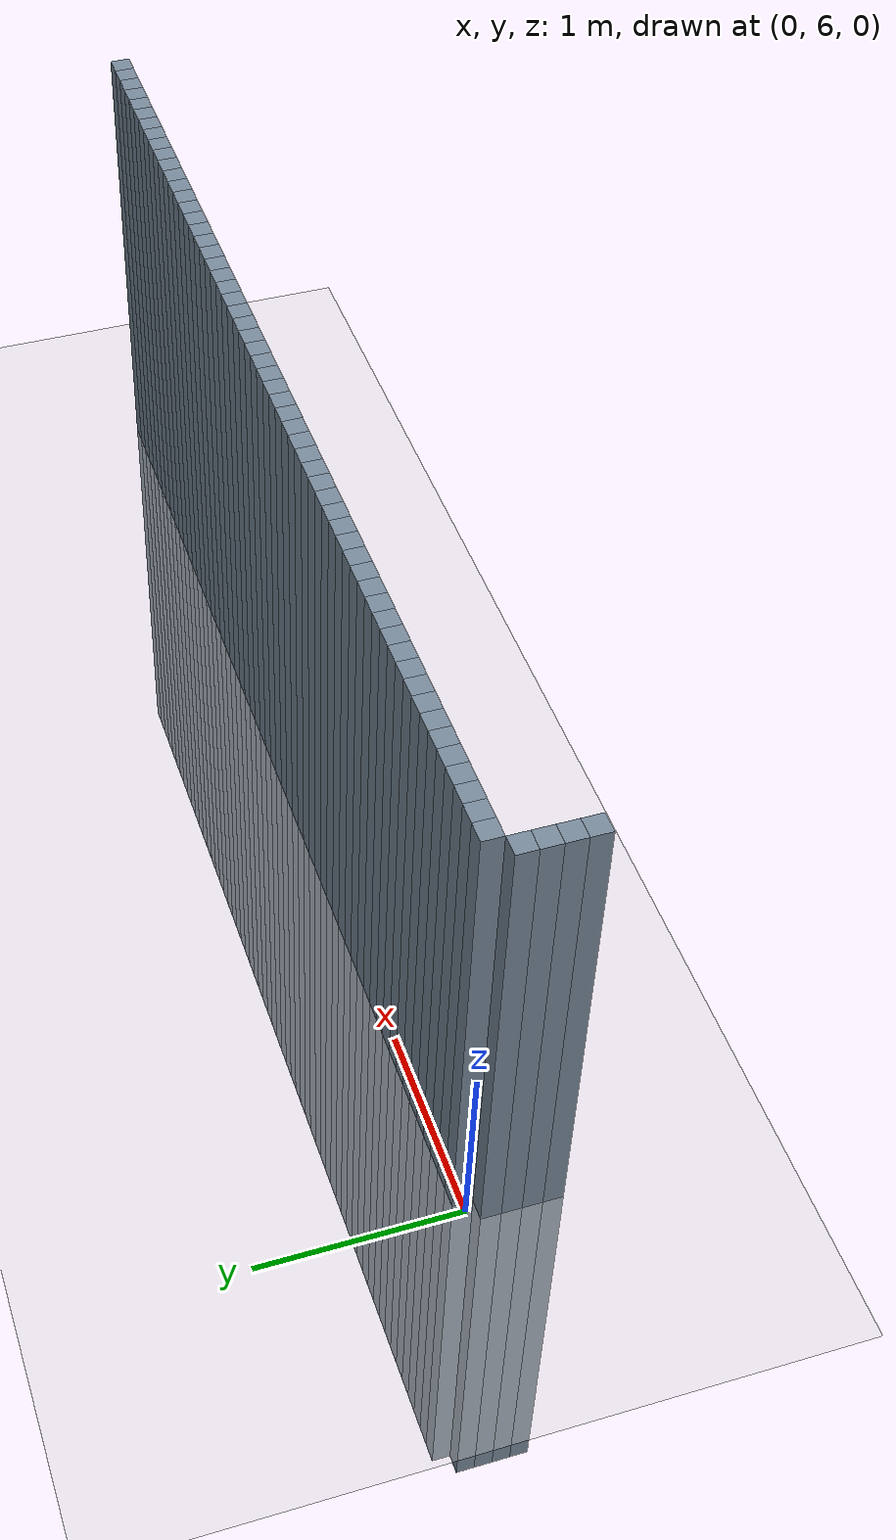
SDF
<sdf version="1.6">
 <world name="default">
  <model name="ground_plane">
   <static>1</static>
   <link name="link">
    <collision name="collision">
     <geometry><plane><normal>0 0 1</normal><size>100 100</size></plane></geometry>
     <surface><friction><ode><mu>100</mu><mu2>50</mu2></ode></friction></surface>
    </collision>
    <visual name="visual">
     <cast_shadows>0</cast_shadows>
     <geometry><plane><normal>0 0 1</normal><size>100 100</size></plane></geometry>
     <material>
      <script><uri>file://media/materials/scripts/gazebo.material</uri><name>Gazebo/Grey</name></script>
     </material>
    </visual>
   </link>
  </model>
  <model name="unit_cylinder_56">
   <static>1</static>
   <pose>0 5.6 0 0 -0 0</pose>
   <link name="link">
    <inertial>
     <mass>1</mass>
     <inertia><ixx>0.145833</ixx><ixy>0</ixy><ixz>0</ixz><iyy>0.145833</iyy><iyz>0</iyz><izz>0.125</izz></inertia>
    </inertial>
    <collision name="collision"><geometry><box><size>0.1 0.1 5</size></box></geometry></collision>
    <visual name="visual">
     <geometry><box><size>0.1 0.1 5</size></box></geometry>
     <material><ambient>0.466667 0.533333 0.6 1</ambient><diffuse>0.466667 0.533333 0.6 1</diffuse></material>
     <material>
      <script><name>Gazebo/Grey</name><uri>file://media/materials/scripts/gazebo.material</uri></script>
     </material>
    </visual>
   </link>
  </model>
  <model name="unit_cylinder_57">
   <static>1</static>
   <pose>0 5.7 0 0 -0 0</pose>
   <link name="link">
    <inertial>
     <mass>1</mass>
     <inertia><ixx>0.145833</ixx><ixy>0</ixy><ixz>0</ixz><iyy>0.145833</iyy><iyz>0</iyz><izz>0.125</izz></inertia>
    </inertial>
    <collision name="collision"><geometry><box><size>0.1 0.1 5</size></box></geometry></collision>
    <visual name="visual">
     <geometry><box><size>0.1 0.1 5</size></box></geometry>
     <material><ambient>0.466667 0.533333 0.6 1</ambient><diffuse>0.466667 0.533333 0.6 1</diffuse></material>
     <material>
      <script><name>Gazebo/Grey</name><uri>file://media/materials/scripts/gazebo.material</uri></script>
     </material>
    </visual>
   </link>
  </model>
  <model name="unit_cylinder_58">
   <static>1</static>
   <pose>0 5.8 0 0 -0 0</pose>
   <link name="link">
    <inertial>
     <mass>1</mass>
     <inertia><ixx>0.145833</ixx><ixy>0</ixy><ixz>0</ixz><iyy>0.145833</iyy><iyz>0</iyz><izz>0.125</izz></inertia>
    </inertial>
    <collision name="collision"><geometry><box><size>0.1 0.1 5</size></box></geometry></collision>
    <visual name="visual">
     <geometry><box><size>0.1 0.1 5</size></box></geometry>
     <material><ambient>0.466667 0.533333 0.6 1</ambient><diffuse>0.466667 0.533333 0.6 1</diffuse></material>
     <material>
      <script><name>Gazebo/Grey</name><uri>file://media/materials/scripts/gazebo.material</uri></script>
     </material>
    </visual>
   </link>
  </model>
  <model name="unit_cylinder_59">
   <static>1</static>
   <pose>0 5.9 0 0 -0 0</pose>
   <link name="link">
    <inertial>
     <mass>1</mass>
     <inertia><ixx>0.145833</ixx><ixy>0</ixy><ixz>0</ixz><iyy>0.145833</iyy><iyz>0</iyz><izz>0.125</izz></inertia>
    </inertial>
    <collision name="collision"><geometry><box><size>0.1 0.1 5</size></box></geometry></collision>
    <visual name="visual">
     <geometry><box><size>0.1 0.1 5</size></box></geometry>
     <material><ambient>0.466667 0.533333 0.6 1</ambient><diffuse>0.466667 0.533333 0.6 1</diffuse></material>
     <material>
      <script><name>Gazebo/Grey</name><uri>file://media/materials/scripts/gazebo.material</uri></script>
     </material>
    </visual>
   </link>
  </model>
  <model name="unit_cylinder_62">
   <static>1</static>
   <pose>0.1 6 0 0 -0 0</pose>
   <link name="link">
    <inertial>
     <mass>1</mass>
     <inertia><ixx>0.145833</ixx><ixy>0</ixy><ixz>0</ixz><iyy>0.145833</iyy><iyz>0</iyz><izz>0.125</izz></inertia>
    </inertial>
    <collision name="collision"><geometry><box><size>0.1 0.1 5</size></box></geometry></collision>
    <visual name="visual">
     <geometry><box><size>0.1 0.1 5</size></box></geometry>
     <material><ambient>0.466667 0.533333 0.6 1</ambient><diffuse>0.466667 0.533333 0.6 1</diffuse></material>
     <material>
      <script><name>Gazebo/Grey</name><uri>file://media/materials/scripts/gazebo.material</uri></script>
     </material>
    </visual>
   </link>
  </model>
  <model name="unit_cylinder_64">
   <static>1</static>
   <pose>0.2 6 0 0 -0 0</pose>
   <link name="link">
    <inertial>
     <mass>1</mass>
     <inertia><ixx>0.145833</ixx><ixy>0</ixy><ixz>0</ixz><iyy>0.145833</iyy><iyz>0</iyz><izz>0.125</izz></inertia>
    </inertial>
    <collision name="collision"><geometry><box><size>0.1 0.1 5</size></box></geometry></collision>
    <visual name="visual">
     <geometry><box><size>0.1 0.1 5</size></box></geometry>
     <material><ambient>0.466667 0.533333 0.6 1</ambient><diffuse>0.466667 0.533333 0.6 1</diffuse></material>
     <material>
      <script><name>Gazebo/Grey</name><uri>file://media/materials/scripts/gazebo.material</uri></script>
     </material>
    </visual>
   </link>
  </model>
  <model name="unit_cylinder_66">
   <static>1</static>
   <pose>0.3 6 0 0 -0 0</pose>
   <link name="link">
    <inertial>
     <mass>1</mass>
     <inertia><ixx>0.145833</ixx><ixy>0</ixy><ixz>0</ixz><iyy>0.145833</iyy><iyz>0</iyz><izz>0.125</izz></inertia>
    </inertial>
    <collision name="collision"><geometry><box><size>0.1 0.1 5</size></box></geometry></collision>
    <visual name="visual">
     <geometry><box><size>0.1 0.1 5</size></box></geometry>
     <material><ambient>0.466667 0.533333 0.6 1</ambient><diffuse>0.466667 0.533333 0.6 1</diffuse></material>
     <material>
      <script><name>Gazebo/Grey</name><uri>file://media/materials/scripts/gazebo.material</uri></script>
     </material>
    </visual>
   </link>
  </model>
  <model name="unit_cylinder_68">
   <static>1</static>
   <pose>0.4 6 0 0 -0 0</pose>
   <link name="link">
    <inertial>
     <mass>1</mass>
     <inertia><ixx>0.145833</ixx><ixy>0</ixy><ixz>0</ixz><iyy>0.145833</iyy><iyz>0</iyz><izz>0.125</izz></inertia>
    </inertial>
    <collision name="collision"><geometry><box><size>0.1 0.1 5</size></box></geometry></collision>
    <visual name="visual">
     <geometry><box><size>0.1 0.1 5</size></box></geometry>
     <material><ambient>0.466667 0.533333 0.6 1</ambient><diffuse>0.466667 0.533333 0.6 1</diffuse></material>
     <material>
      <script><name>Gazebo/Grey</name><uri>file://media/materials/scripts/gazebo.material</uri></script>
     </material>
    </visual>
   </link>
  </model>
  <model name="unit_cylinder_70">
   <static>1</static>
   <pose>0.5 6 0 0 -0 0</pose>
   <link name="link">
    <inertial>
     <mass>1</mass>
     <inertia><ixx>0.145833</ixx><ixy>0</ixy><ixz>0</ixz><iyy>0.145833</iyy><iyz>0</iyz><izz>0.125</izz></inertia>
    </inertial>
    <collision name="collision"><geometry><box><size>0.1 0.1 5</size></box></geometry></collision>
    <visual name="visual">
     <geometry><box><size>0.1 0.1 5</size></box></geometry>
     <material><ambient>0.466667 0.533333 0.6 1</ambient><diffuse>0.466667 0.533333 0.6 1</diffuse></material>
     <material>
      <script><name>Gazebo/Grey</name><uri>file://media/materials/scripts/gazebo.material</uri></script>
     </material>
    </visual>
   </link>
  </model>
  <model name="unit_cylinder_72">
   <static>1</static>
   <pose>0.6 6 0 0 -0 0</pose>
   <link name="link">
    <inertial>
     <mass>1</mass>
     <inertia><ixx>0.145833</ixx><ixy>0</ixy><ixz>0</ixz><iyy>0.145833</iyy><iyz>0</iyz><izz>0.125</izz></inertia>
    </inertial>
    <collision name="collision"><geometry><box><size>0.1 0.1 5</size></box></geometry></collision>
    <visual name="visual">
     <geometry><box><size>0.1 0.1 5</size></box></geometry>
     <material><ambient>0.466667 0.533333 0.6 1</ambient><diffuse>0.466667 0.533333 0.6 1</diffuse></material>
     <material>
      <script><name>Gazebo/Grey</name><uri>file://media/materials/scripts/gazebo.material</uri></script>
     </material>
    </visual>
   </link>
  </model>
  <model name="unit_cylinder_74">
   <static>1</static>
   <pose>0.7 6 0 0 -0 0</pose>
   <link name="link">
    <inertial>
     <mass>1</mass>
     <inertia><ixx>0.145833</ixx><ixy>0</ixy><ixz>0</ixz><iyy>0.145833</iyy><iyz>0</iyz><izz>0.125</izz></inertia>
    </inertial>
    <collision name="collision"><geometry><box><size>0.1 0.1 5</size></box></geometry></collision>
    <visual name="visual">
     <geometry><box><size>0.1 0.1 5</size></box></geometry>
     <material><ambient>0.466667 0.533333 0.6 1</ambient><diffuse>0.466667 0.533333 0.6 1</diffuse></material>
     <material>
      <script><name>Gazebo/Grey</name><uri>file://media/materials/scripts/gazebo.material</uri></script>
     </material>
    </visual>
   </link>
  </model>
  <model name="unit_cylinder_76">
   <static>1</static>
   <pose>0.8 6 0 0 -0 0</pose>
   <link name="link">
    <inertial>
     <mass>1</mass>
     <inertia><ixx>0.145833</ixx><ixy>0</ixy><ixz>0</ixz><iyy>0.145833</iyy><iyz>0</iyz><izz>0.125</izz></inertia>
    </inertial>
    <collision name="collision"><geometry><box><size>0.1 0.1 5</size></box></geometry></collision>
    <visual name="visual">
     <geometry><box><size>0.1 0.1 5</size></box></geometry>
     <material><ambient>0.466667 0.533333 0.6 1</ambient><diffuse>0.466667 0.533333 0.6 1</diffuse></material>
     <material>
      <script><name>Gazebo/Grey</name><uri>file://media/materials/scripts/gazebo.material</uri></script>
     </material>
    </visual>
   </link>
  </model>
  <model name="unit_cylinder_78">
   <static>1</static>
   <pose>0.9 6 0 0 -0 0</pose>
   <link name="link">
    <inertial>
     <mass>1</mass>
     <inertia><ixx>0.145833</ixx><ixy>0</ixy><ixz>0</ixz><iyy>0.145833</iyy><iyz>0</iyz><izz>0.125</izz></inertia>
    </inertial>
    <collision name="collision"><geometry><box><size>0.1 0.1 5</size></box></geometry></collision>
    <visual name="visual">
     <geometry><box><size>0.1 0.1 5</size></box></geometry>
     <material><ambient>0.466667 0.533333 0.6 1</ambient><diffuse>0.466667 0.533333 0.6 1</diffuse></material>
     <material>
      <script><name>Gazebo/Grey</name><uri>file://media/materials/scripts/gazebo.material</uri></script>
     </material>
    </visual>
   </link>
  </model>
  <model name="unit_cylinder_80">
   <static>1</static>
   <pose>1 6 0 0 -0 0</pose>
   <link name="link">
    <inertial>
     <mass>1</mass>
     <inertia><ixx>0.145833</ixx><ixy>0</ixy><ixz>0</ixz><iyy>0.145833</iyy><iyz>0</iyz><izz>0.125</izz></inertia>
    </inertial>
    <collision name="collision"><geometry><box><size>0.1 0.1 5</size></box></geometry></collision>
    <visual name="visual">
     <geometry><box><size>0.1 0.1 5</size></box></geometry>
     <material><ambient>0.466667 0.533333 0.6 1</ambient><diffuse>0.466667 0.533333 0.6 1</diffuse></material>
     <material>
      <script><name>Gazebo/Grey</name><uri>file://media/materials/scripts/gazebo.material</uri></script>
     </material>
    </visual>
   </link>
  </model>
  <model name="unit_cylinder_82">
   <static>1</static>
   <pose>1.1 6 0 0 -0 0</pose>
   <link name="link">
    <inertial>
     <mass>1</mass>
     <inertia><ixx>0.145833</ixx><ixy>0</ixy><ixz>0</ixz><iyy>0.145833</iyy><iyz>0</iyz><izz>0.125</izz></inertia>
    </inertial>
    <collision name="collision"><geometry><box><size>0.1 0.1 5</size></box></geometry></collision>
    <visual name="visual">
     <geometry><box><size>0.1 0.1 5</size></box></geometry>
     <material><ambient>0.466667 0.533333 0.6 1</ambient><diffuse>0.466667 0.533333 0.6 1</diffuse></material>
     <material>
      <script><name>Gazebo/Grey</name><uri>file://media/materials/scripts/gazebo.material</uri></script>
     </material>
    </visual>
   </link>
  </model>
  <model name="unit_cylinder_84">
   <static>1</static>
   <pose>1.2 6 0 0 -0 0</pose>
   <link name="link">
    <inertial>
     <mass>1</mass>
     <inertia><ixx>0.145833</ixx><ixy>0</ixy><ixz>0</ixz><iyy>0.145833</iyy><iyz>0</iyz><izz>0.125</izz></inertia>
    </inertial>
    <collision name="collision"><geometry><box><size>0.1 0.1 5</size></box></geometry></collision>
    <visual name="visual">
     <geometry><box><size>0.1 0.1 5</size></box></geometry>
     <material><ambient>0.466667 0.533333 0.6 1</ambient><diffuse>0.466667 0.533333 0.6 1</diffuse></material>
     <material>
      <script><name>Gazebo/Grey</name><uri>file://media/materials/scripts/gazebo.material</uri></script>
     </material>
    </visual>
   </link>
  </model>
  <model name="unit_cylinder_86">
   <static>1</static>
   <pose>1.3 6 0 0 -0 0</pose>
   <link name="link">
    <inertial>
     <mass>1</mass>
     <inertia><ixx>0.145833</ixx><ixy>0</ixy><ixz>0</ixz><iyy>0.145833</iyy><iyz>0</iyz><izz>0.125</izz></inertia>
    </inertial>
    <collision name="collision"><geometry><box><size>0.1 0.1 5</size></box></geometry></collision>
    <visual name="visual">
     <geometry><box><size>0.1 0.1 5</size></box></geometry>
     <material><ambient>0.466667 0.533333 0.6 1</ambient><diffuse>0.466667 0.533333 0.6 1</diffuse></material>
     <material>
      <script><name>Gazebo/Grey</name><uri>file://media/materials/scripts/gazebo.material</uri></script>
     </material>
    </visual>
   </link>
  </model>
  <model name="unit_cylinder_88">
   <static>1</static>
   <pose>1.4 6 0 0 -0 0</pose>
   <link name="link">
    <inertial>
     <mass>1</mass>
     <inertia><ixx>0.145833</ixx><ixy>0</ixy><ixz>0</ixz><iyy>0.145833</iyy><iyz>0</iyz><izz>0.125</izz></inertia>
    </inertial>
    <collision name="collision"><geometry><box><size>0.1 0.1 5</size></box></geometry></collision>
    <visual name="visual">
     <geometry><box><size>0.1 0.1 5</size></box></geometry>
     <material><ambient>0.466667 0.533333 0.6 1</ambient><diffuse>0.466667 0.533333 0.6 1</diffuse></material>
     <material>
      <script><name>Gazebo/Grey</name><uri>file://media/materials/scripts/gazebo.material</uri></script>
     </material>
    </visual>
   </link>
  </model>
  <model name="unit_cylinder_90">
   <static>1</static>
   <pose>1.5 6 0 0 -0 0</pose>
   <link name="link">
    <inertial>
     <mass>1</mass>
     <inertia><ixx>0.145833</ixx><ixy>0</ixy><ixz>0</ixz><iyy>0.145833</iyy><iyz>0</iyz><izz>0.125</izz></inertia>
    </inertial>
    <collision name="collision"><geometry><box><size>0.1 0.1 5</size></box></geometry></collision>
    <visual name="visual">
     <geometry><box><size>0.1 0.1 5</size></box></geometry>
     <material><ambient>0.466667 0.533333 0.6 1</ambient><diffuse>0.466667 0.533333 0.6 1</diffuse></material>
     <material>
      <script><name>Gazebo/Grey</name><uri>file://media/materials/scripts/gazebo.material</uri></script>
     </material>
    </visual>
   </link>
  </model>
  <model name="unit_cylinder_92">
   <static>1</static>
   <pose>1.6 6 0 0 -0 0</pose>
   <link name="link">
    <inertial>
     <mass>1</mass>
     <inertia><ixx>0.145833</ixx><ixy>0</ixy><ixz>0</ixz><iyy>0.145833</iyy><iyz>0</iyz><izz>0.125</izz></inertia>
    </inertial>
    <collision name="collision"><geometry><box><size>0.1 0.1 5</size></box></geometry></collision>
    <visual name="visual">
     <geometry><box><size>0.1 0.1 5</size></box></geometry>
     <material><ambient>0.466667 0.533333 0.6 1</ambient><diffuse>0.466667 0.533333 0.6 1</diffuse></material>
     <material>
      <script><name>Gazebo/Grey</name><uri>file://media/materials/scripts/gazebo.material</uri></script>
     </material>
    </visual>
   </link>
  </model>
  <model name="unit_cylinder_94">
   <static>1</static>
   <pose>1.7 6 0 0 -0 0</pose>
   <link name="link">
    <inertial>
     <mass>1</mass>
     <inertia><ixx>0.145833</ixx><ixy>0</ixy><ixz>0</ixz><iyy>0.145833</iyy><iyz>0</iyz><izz>0.125</izz></inertia>
    </inertial>
    <collision name="collision"><geometry><box><size>0.1 0.1 5</size></box></geometry></collision>
    <visual name="visual">
     <geometry><box><size>0.1 0.1 5</size></box></geometry>
     <material><ambient>0.466667 0.533333 0.6 1</ambient><diffuse>0.466667 0.533333 0.6 1</diffuse></material>
     <material>
      <script><name>Gazebo/Grey</name><uri>file://media/materials/scripts/gazebo.material</uri></script>
     </material>
    </visual>
   </link>
  </model>
  <model name="unit_cylinder_96">
   <static>1</static>
   <pose>1.8 6 0 0 -0 0</pose>
   <link name="link">
    <inertial>
     <mass>1</mass>
     <inertia><ixx>0.145833</ixx><ixy>0</ixy><ixz>0</ixz><iyy>0.145833</iyy><iyz>0</iyz><izz>0.125</izz></inertia>
    </inertial>
    <collision name="collision"><geometry><box><size>0.1 0.1 5</size></box></geometry></collision>
    <visual name="visual">
     <geometry><box><size>0.1 0.1 5</size></box></geometry>
     <material><ambient>0.466667 0.533333 0.6 1</ambient><diffuse>0.466667 0.533333 0.6 1</diffuse></material>
     <material>
      <script><name>Gazebo/Grey</name><uri>file://media/materials/scripts/gazebo.material</uri></script>
     </material>
    </visual>
   </link>
  </model>
  <model name="unit_cylinder_98">
   <static>1</static>
   <pose>1.9 6 0 0 -0 0</pose>
   <link name="link">
    <inertial>
     <mass>1</mass>
     <inertia><ixx>0.145833</ixx><ixy>0</ixy><ixz>0</ixz><iyy>0.145833</iyy><iyz>0</iyz><izz>0.125</izz></inertia>
    </inertial>
    <collision name="collision"><geometry><box><size>0.1 0.1 5</size></box></geometry></collision>
    <visual name="visual">
     <geometry><box><size>0.1 0.1 5</size></box></geometry>
     <material><ambient>0.466667 0.533333 0.6 1</ambient><diffuse>0.466667 0.533333 0.6 1</diffuse></material>
     <material>
      <script><name>Gazebo/Grey</name><uri>file://media/materials/scripts/gazebo.material</uri></script>
     </material>
    </visual>
   </link>
  </model>
  <model name="unit_cylinder_100">
   <static>1</static>
   <pose>2 6 0 0 -0 0</pose>
   <link name="link">
    <inertial>
     <mass>1</mass>
     <inertia><ixx>0.145833</ixx><ixy>0</ixy><ixz>0</ixz><iyy>0.145833</iyy><iyz>0</iyz><izz>0.125</izz></inertia>
    </inertial>
    <collision name="collision"><geometry><box><size>0.1 0.1 5</size></box></geometry></collision>
    <visual name="visual">
     <geometry><box><size>0.1 0.1 5</size></box></geometry>
     <material><ambient>0.466667 0.533333 0.6 1</ambient><diffuse>0.466667 0.533333 0.6 1</diffuse></material>
     <material>
      <script><name>Gazebo/Grey</name><uri>file://media/materials/scripts/gazebo.material</uri></script>
     </material>
    </visual>
   </link>
  </model>
  <model name="unit_cylinder_102">
   <static>1</static>
   <pose>2.1 6 0 0 -0 0</pose>
   <link name="link">
    <inertial>
     <mass>1</mass>
     <inertia><ixx>0.145833</ixx><ixy>0</ixy><ixz>0</ixz><iyy>0.145833</iyy><iyz>0</iyz><izz>0.125</izz></inertia>
    </inertial>
    <collision name="collision"><geometry><box><size>0.1 0.1 5</size></box></geometry></collision>
    <visual name="visual">
     <geometry><box><size>0.1 0.1 5</size></box></geometry>
     <material><ambient>0.466667 0.533333 0.6 1</ambient><diffuse>0.466667 0.533333 0.6 1</diffuse></material>
     <material>
      <script><name>Gazebo/Grey</name><uri>file://media/materials/scripts/gazebo.material</uri></script>
     </material>
    </visual>
   </link>
  </model>
  <model name="unit_cylinder_104">
   <static>1</static>
   <pose>2.2 6 0 0 -0 0</pose>
   <link name="link">
    <inertial>
     <mass>1</mass>
     <inertia><ixx>0.145833</ixx><ixy>0</ixy><ixz>0</ixz><iyy>0.145833</iyy><iyz>0</iyz><izz>0.125</izz></inertia>
    </inertial>
    <collision name="collision"><geometry><box><size>0.1 0.1 5</size></box></geometry></collision>
    <visual name="visual">
     <geometry><box><size>0.1 0.1 5</size></box></geometry>
     <material><ambient>0.466667 0.533333 0.6 1</ambient><diffuse>0.466667 0.533333 0.6 1</diffuse></material>
     <material>
      <script><name>Gazebo/Grey</name><uri>file://media/materials/scripts/gazebo.material</uri></script>
     </material>
    </visual>
   </link>
  </model>
  <model name="unit_cylinder_106">
   <static>1</static>
   <pose>2.3 6 0 0 -0 0</pose>
   <link name="link">
    <inertial>
     <mass>1</mass>
     <inertia><ixx>0.145833</ixx><ixy>0</ixy><ixz>0</ixz><iyy>0.145833</iyy><iyz>0</iyz><izz>0.125</izz></inertia>
    </inertial>
    <collision name="collision"><geometry><box><size>0.1 0.1 5</size></box></geometry></collision>
    <visual name="visual">
     <geometry><box><size>0.1 0.1 5</size></box></geometry>
     <material><ambient>0.466667 0.533333 0.6 1</ambient><diffuse>0.466667 0.533333 0.6 1</diffuse></material>
     <material>
      <script><name>Gazebo/Grey</name><uri>file://media/materials/scripts/gazebo.material</uri></script>
     </material>
    </visual>
   </link>
  </model>
  <model name="unit_cylinder_108">
   <static>1</static>
   <pose>2.4 6 0 0 -0 0</pose>
   <link name="link">
    <inertial>
     <mass>1</mass>
     <inertia><ixx>0.145833</ixx><ixy>0</ixy><ixz>0</ixz><iyy>0.145833</iyy><iyz>0</iyz><izz>0.125</izz></inertia>
    </inertial>
    <collision name="collision"><geometry><box><size>0.1 0.1 5</size></box></geometry></collision>
    <visual name="visual">
     <geometry><box><size>0.1 0.1 5</size></box></geometry>
     <material><ambient>0.466667 0.533333 0.6 1</ambient><diffuse>0.466667 0.533333 0.6 1</diffuse></material>
     <material>
      <script><name>Gazebo/Grey</name><uri>file://media/materials/scripts/gazebo.material</uri></script>
     </material>
    </visual>
   </link>
  </model>
  <model name="unit_cylinder_110">
   <static>1</static>
   <pose>2.5 6 0 0 -0 0</pose>
   <link name="link">
    <inertial>
     <mass>1</mass>
     <inertia><ixx>0.145833</ixx><ixy>0</ixy><ixz>0</ixz><iyy>0.145833</iyy><iyz>0</iyz><izz>0.125</izz></inertia>
    </inertial>
    <collision name="collision"><geometry><box><size>0.1 0.1 5</size></box></geometry></collision>
    <visual name="visual">
     <geometry><box><size>0.1 0.1 5</size></box></geometry>
     <material><ambient>0.466667 0.533333 0.6 1</ambient><diffuse>0.466667 0.533333 0.6 1</diffuse></material>
     <material>
      <script><name>Gazebo/Grey</name><uri>file://media/materials/scripts/gazebo.material</uri></script>
     </material>
    </visual>
   </link>
  </model>
  <model name="unit_cylinder_112">
   <static>1</static>
   <pose>2.6 6 0 0 -0 0</pose>
   <link name="link">
    <inertial>
     <mass>1</mass>
     <inertia><ixx>0.145833</ixx><ixy>0</ixy><ixz>0</ixz><iyy>0.145833</iyy><iyz>0</iyz><izz>0.125</izz></inertia>
    </inertial>
    <collision name="collision"><geometry><box><size>0.1 0.1 5</size></box></geometry></collision>
    <visual name="visual">
     <geometry><box><size>0.1 0.1 5</size></box></geometry>
     <material><ambient>0.466667 0.533333 0.6 1</ambient><diffuse>0.466667 0.533333 0.6 1</diffuse></material>
     <material>
      <script><name>Gazebo/Grey</name><uri>file://media/materials/scripts/gazebo.material</uri></script>
     </material>
    </visual>
   </link>
  </model>
  <model name="unit_cylinder_114">
   <static>1</static>
   <pose>2.7 6 0 0 -0 0</pose>
   <link name="link">
    <inertial>
     <mass>1</mass>
     <inertia><ixx>0.145833</ixx><ixy>0</ixy><ixz>0</ixz><iyy>0.145833</iyy><iyz>0</iyz><izz>0.125</izz></inertia>
    </inertial>
    <collision name="collision"><geometry><box><size>0.1 0.1 5</size></box></geometry></collision>
    <visual name="visual">
     <geometry><box><size>0.1 0.1 5</size></box></geometry>
     <material><ambient>0.466667 0.533333 0.6 1</ambient><diffuse>0.466667 0.533333 0.6 1</diffuse></material>
     <material>
      <script><name>Gazebo/Grey</name><uri>file://media/materials/scripts/gazebo.material</uri></script>
     </material>
    </visual>
   </link>
  </model>
  <model name="unit_cylinder_116">
   <static>1</static>
   <pose>2.8 6 0 0 -0 0</pose>
   <link name="link">
    <inertial>
     <mass>1</mass>
     <inertia><ixx>0.145833</ixx><ixy>0</ixy><ixz>0</ixz><iyy>0.145833</iyy><iyz>0</iyz><izz>0.125</izz></inertia>
    </inertial>
    <collision name="collision"><geometry><box><size>0.1 0.1 5</size></box></geometry></collision>
    <visual name="visual">
     <geometry><box><size>0.1 0.1 5</size></box></geometry>
     <material><ambient>0.466667 0.533333 0.6 1</ambient><diffuse>0.466667 0.533333 0.6 1</diffuse></material>
     <material>
      <script><name>Gazebo/Grey</name><uri>file://media/materials/scripts/gazebo.material</uri></script>
     </material>
    </visual>
   </link>
  </model>
  <model name="unit_cylinder_118">
   <static>1</static>
   <pose>2.9 6 0 0 -0 0</pose>
   <link name="link">
    <inertial>
     <mass>1</mass>
     <inertia><ixx>0.145833</ixx><ixy>0</ixy><ixz>0</ixz><iyy>0.145833</iyy><iyz>0</iyz><izz>0.125</izz></inertia>
    </inertial>
    <collision name="collision"><geometry><box><size>0.1 0.1 5</size></box></geometry></collision>
    <visual name="visual">
     <geometry><box><size>0.1 0.1 5</size></box></geometry>
     <material><ambient>0.466667 0.533333 0.6 1</ambient><diffuse>0.466667 0.533333 0.6 1</diffuse></material>
     <material>
      <script><name>Gazebo/Grey</name><uri>file://media/materials/scripts/gazebo.material</uri></script>
     </material>
    </visual>
   </link>
  </model>
  <model name="unit_cylinder_120">
   <static>1</static>
   <pose>3 6 0 0 -0 0</pose>
   <link name="link">
    <inertial>
     <mass>1</mass>
     <inertia><ixx>0.145833</ixx><ixy>0</ixy><ixz>0</ixz><iyy>0.145833</iyy><iyz>0</iyz><izz>0.125</izz></inertia>
    </inertial>
    <collision name="collision"><geometry><box><size>0.1 0.1 5</size></box></geometry></collision>
    <visual name="visual">
     <geometry><box><size>0.1 0.1 5</size></box></geometry>
     <material><ambient>0.466667 0.533333 0.6 1</ambient><diffuse>0.466667 0.533333 0.6 1</diffuse></material>
     <material>
      <script><name>Gazebo/Grey</name><uri>file://media/materials/scripts/gazebo.material</uri></script>
     </material>
    </visual>
   </link>
  </model>
  <model name="unit_cylinder_122">
   <static>1</static>
   <pose>3.1 6 0 0 -0 0</pose>
   <link name="link">
    <inertial>
     <mass>1</mass>
     <inertia><ixx>0.145833</ixx><ixy>0</ixy><ixz>0</ixz><iyy>0.145833</iyy><iyz>0</iyz><izz>0.125</izz></inertia>
    </inertial>
    <collision name="collision"><geometry><box><size>0.1 0.1 5</size></box></geometry></collision>
    <visual name="visual">
     <geometry><box><size>0.1 0.1 5</size></box></geometry>
     <material><ambient>0.466667 0.533333 0.6 1</ambient><diffuse>0.466667 0.533333 0.6 1</diffuse></material>
     <material>
      <script><name>Gazebo/Grey</name><uri>file://media/materials/scripts/gazebo.material</uri></script>
     </material>
    </visual>
   </link>
  </model>
  <model name="unit_cylinder_124">
   <static>1</static>
   <pose>3.2 6 0 0 -0 0</pose>
   <link name="link">
    <inertial>
     <mass>1</mass>
     <inertia><ixx>0.145833</ixx><ixy>0</ixy><ixz>0</ixz><iyy>0.145833</iyy><iyz>0</iyz><izz>0.125</izz></inertia>
    </inertial>
    <collision name="collision"><geometry><box><size>0.1 0.1 5</size></box></geometry></collision>
    <visual name="visual">
     <geometry><box><size>0.1 0.1 5</size></box></geometry>
     <material><ambient>0.466667 0.533333 0.6 1</ambient><diffuse>0.466667 0.533333 0.6 1</diffuse></material>
     <material>
      <script><name>Gazebo/Grey</name><uri>file://media/materials/scripts/gazebo.material</uri></script>
     </material>
    </visual>
   </link>
  </model>
  <model name="unit_cylinder_126">
   <static>1</static>
   <pose>3.3 6 0 0 -0 0</pose>
   <link name="link">
    <inertial>
     <mass>1</mass>
     <inertia><ixx>0.145833</ixx><ixy>0</ixy><ixz>0</ixz><iyy>0.145833</iyy><iyz>0</iyz><izz>0.125</izz></inertia>
    </inertial>
    <collision name="collision"><geometry><box><size>0.1 0.1 5</size></box></geometry></collision>
    <visual name="visual">
     <geometry><box><size>0.1 0.1 5</size></box></geometry>
     <material><ambient>0.466667 0.533333 0.6 1</ambient><diffuse>0.466667 0.533333 0.6 1</diffuse></material>
     <material>
      <script><name>Gazebo/Grey</name><uri>file://media/materials/scripts/gazebo.material</uri></script>
     </material>
    </visual>
   </link>
  </model>
  <model name="unit_cylinder_128">
   <static>1</static>
   <pose>3.4 6 0 0 -0 0</pose>
   <link name="link">
    <inertial>
     <mass>1</mass>
     <inertia><ixx>0.145833</ixx><ixy>0</ixy><ixz>0</ixz><iyy>0.145833</iyy><iyz>0</iyz><izz>0.125</izz></inertia>
    </inertial>
    <collision name="collision"><geometry><box><size>0.1 0.1 5</size></box></geometry></collision>
    <visual name="visual">
     <geometry><box><size>0.1 0.1 5</size></box></geometry>
     <material><ambient>0.466667 0.533333 0.6 1</ambient><diffuse>0.466667 0.533333 0.6 1</diffuse></material>
     <material>
      <script><name>Gazebo/Grey</name><uri>file://media/materials/scripts/gazebo.material</uri></script>
     </material>
    </visual>
   </link>
  </model>
  <model name="unit_cylinder_130">
   <static>1</static>
   <pose>3.5 6 0 0 -0 0</pose>
   <link name="link">
    <inertial>
     <mass>1</mass>
     <inertia><ixx>0.145833</ixx><ixy>0</ixy><ixz>0</ixz><iyy>0.145833</iyy><iyz>0</iyz><izz>0.125</izz></inertia>
    </inertial>
    <collision name="collision"><geometry><box><size>0.1 0.1 5</size></box></geometry></collision>
    <visual name="visual">
     <geometry><box><size>0.1 0.1 5</size></box></geometry>
     <material><ambient>0.466667 0.533333 0.6 1</ambient><diffuse>0.466667 0.533333 0.6 1</diffuse></material>
     <material>
      <script><name>Gazebo/Grey</name><uri>file://media/materials/scripts/gazebo.material</uri></script>
     </material>
    </visual>
   </link>
  </model>
  <model name="unit_cylinder_132">
   <static>1</static>
   <pose>3.6 6 0 0 -0 0</pose>
   <link name="link">
    <inertial>
     <mass>1</mass>
     <inertia><ixx>0.145833</ixx><ixy>0</ixy><ixz>0</ixz><iyy>0.145833</iyy><iyz>0</iyz><izz>0.125</izz></inertia>
    </inertial>
    <collision name="collision"><geometry><box><size>0.1 0.1 5</size></box></geometry></collision>
    <visual name="visual">
     <geometry><box><size>0.1 0.1 5</size></box></geometry>
     <material><ambient>0.466667 0.533333 0.6 1</ambient><diffuse>0.466667 0.533333 0.6 1</diffuse></material>
     <material>
      <script><name>Gazebo/Grey</name><uri>file://media/materials/scripts/gazebo.material</uri></script>
     </material>
    </visual>
   </link>
  </model>
  <model name="unit_cylinder_134">
   <static>1</static>
   <pose>3.7 6 0 0 -0 0</pose>
   <link name="link">
    <inertial>
     <mass>1</mass>
     <inertia><ixx>0.145833</ixx><ixy>0</ixy><ixz>0</ixz><iyy>0.145833</iyy><iyz>0</iyz><izz>0.125</izz></inertia>
    </inertial>
    <collision name="collision"><geometry><box><size>0.1 0.1 5</size></box></geometry></collision>
    <visual name="visual">
     <geometry><box><size>0.1 0.1 5</size></box></geometry>
     <material><ambient>0.466667 0.533333 0.6 1</ambient><diffuse>0.466667 0.533333 0.6 1</diffuse></material>
     <material>
      <script><name>Gazebo/Grey</name><uri>file://media/materials/scripts/gazebo.material</uri></script>
     </material>
    </visual>
   </link>
  </model>
  <model name="unit_cylinder_136">
   <static>1</static>
   <pose>3.8 6 0 0 -0 0</pose>
   <link name="link">
    <inertial>
     <mass>1</mass>
     <inertia><ixx>0.145833</ixx><ixy>0</ixy><ixz>0</ixz><iyy>0.145833</iyy><iyz>0</iyz><izz>0.125</izz></inertia>
    </inertial>
    <collision name="collision"><geometry><box><size>0.1 0.1 5</size></box></geometry></collision>
    <visual name="visual">
     <geometry><box><size>0.1 0.1 5</size></box></geometry>
     <material><ambient>0.466667 0.533333 0.6 1</ambient><diffuse>0.466667 0.533333 0.6 1</diffuse></material>
     <material>
      <script><name>Gazebo/Grey</name><uri>file://media/materials/scripts/gazebo.material</uri></script>
     </material>
    </visual>
   </link>
  </model>
  <model name="unit_cylinder_138">
   <static>1</static>
   <pose>3.9 6 0 0 -0 0</pose>
   <link name="link">
    <inertial>
     <mass>1</mass>
     <inertia><ixx>0.145833</ixx><ixy>0</ixy><ixz>0</ixz><iyy>0.145833</iyy><iyz>0</iyz><izz>0.125</izz></inertia>
    </inertial>
    <collision name="collision"><geometry><box><size>0.1 0.1 5</size></box></geometry></collision>
    <visual name="visual">
     <geometry><box><size>0.1 0.1 5</size></box></geometry>
     <material><ambient>0.466667 0.533333 0.6 1</ambient><diffuse>0.466667 0.533333 0.6 1</diffuse></material>
     <material>
      <script><name>Gazebo/Grey</name><uri>file://media/materials/scripts/gazebo.material</uri></script>
     </material>
    </visual>
   </link>
  </model>
  <model name="unit_cylinder_140">
   <static>1</static>
   <pose>4 6 0 0 -0 0</pose>
   <link name="link">
    <inertial>
     <mass>1</mass>
     <inertia><ixx>0.145833</ixx><ixy>0</ixy><ixz>0</ixz><iyy>0.145833</iyy><iyz>0</iyz><izz>0.125</izz></inertia>
    </inertial>
    <collision name="collision"><geometry><box><size>0.1 0.1 5</size></box></geometry></collision>
    <visual name="visual">
     <geometry><box><size>0.1 0.1 5</size></box></geometry>
     <material><ambient>0.466667 0.533333 0.6 1</ambient><diffuse>0.466667 0.533333 0.6 1</diffuse></material>
     <material>
      <script><name>Gazebo/Grey</name><uri>file://media/materials/scripts/gazebo.material</uri></script>
     </material>
    </visual>
   </link>
  </model>
  <model name="unit_cylinder_142">
   <static>1</static>
   <pose>4.1 6 0 0 -0 0</pose>
   <link name="link">
    <inertial>
     <mass>1</mass>
     <inertia><ixx>0.145833</ixx><ixy>0</ixy><ixz>0</ixz><iyy>0.145833</iyy><iyz>0</iyz><izz>0.125</izz></inertia>
    </inertial>
    <collision name="collision"><geometry><box><size>0.1 0.1 5</size></box></geometry></collision>
    <visual name="visual">
     <geometry><box><size>0.1 0.1 5</size></box></geometry>
     <material><ambient>0.466667 0.533333 0.6 1</ambient><diffuse>0.466667 0.533333 0.6 1</diffuse></material>
     <material>
      <script><name>Gazebo/Grey</name><uri>file://media/materials/scripts/gazebo.material</uri></script>
     </material>
    </visual>
   </link>
  </model>
  <model name="unit_cylinder_144">
   <static>1</static>
   <pose>4.2 6 0 0 -0 0</pose>
   <link name="link">
    <inertial>
     <mass>1</mass>
     <inertia><ixx>0.145833</ixx><ixy>0</ixy><ixz>0</ixz><iyy>0.145833</iyy><iyz>0</iyz><izz>0.125</izz></inertia>
    </inertial>
    <collision name="collision"><geometry><box><size>0.1 0.1 5</size></box></geometry></collision>
    <visual name="visual">
     <geometry><box><size>0.1 0.1 5</size></box></geometry>
     <material><ambient>0.466667 0.533333 0.6 1</ambient><diffuse>0.466667 0.533333 0.6 1</diffuse></material>
     <material>
      <script><name>Gazebo/Grey</name><uri>file://media/materials/scripts/gazebo.material</uri></script>
     </material>
    </visual>
   </link>
  </model>
  <model name="unit_cylinder_146">
   <static>1</static>
   <pose>4.3 6 0 0 -0 0</pose>
   <link name="link">
    <inertial>
     <mass>1</mass>
     <inertia><ixx>0.145833</ixx><ixy>0</ixy><ixz>0</ixz><iyy>0.145833</iyy><iyz>0</iyz><izz>0.125</izz></inertia>
    </inertial>
    <collision name="collision"><geometry><box><size>0.1 0.1 5</size></box></geometry></collision>
    <visual name="visual">
     <geometry><box><size>0.1 0.1 5</size></box></geometry>
     <material><ambient>0.466667 0.533333 0.6 1</ambient><diffuse>0.466667 0.533333 0.6 1</diffuse></material>
     <material>
      <script><name>Gazebo/Grey</name><uri>file://media/materials/scripts/gazebo.material</uri></script>
     </material>
    </visual>
   </link>
  </model>
  <model name="unit_cylinder_148">
   <static>1</static>
   <pose>4.4 6 0 0 -0 0</pose>
   <link name="link">
    <inertial>
     <mass>1</mass>
     <inertia><ixx>0.145833</ixx><ixy>0</ixy><ixz>0</ixz><iyy>0.145833</iyy><iyz>0</iyz><izz>0.125</izz></inertia>
    </inertial>
    <collision name="collision"><geometry><box><size>0.1 0.1 5</size></box></geometry></collision>
    <visual name="visual">
     <geometry><box><size>0.1 0.1 5</size></box></geometry>
     <material><ambient>0.466667 0.533333 0.6 1</ambient><diffuse>0.466667 0.533333 0.6 1</diffuse></material>
     <material>
      <script><name>Gazebo/Grey</name><uri>file://media/materials/scripts/gazebo.material</uri></script>
     </material>
    </visual>
   </link>
  </model>
  <model name="unit_cylinder_150">
   <static>1</static>
   <pose>4.5 6 0 0 -0 0</pose>
   <link name="link">
    <inertial>
     <mass>1</mass>
     <inertia><ixx>0.145833</ixx><ixy>0</ixy><ixz>0</ixz><iyy>0.145833</iyy><iyz>0</iyz><izz>0.125</izz></inertia>
    </inertial>
    <collision name="collision"><geometry><box><size>0.1 0.1 5</size></box></geometry></collision>
    <visual name="visual">
     <geometry><box><size>0.1 0.1 5</size></box></geometry>
     <material><ambient>0.466667 0.533333 0.6 1</ambient><diffuse>0.466667 0.533333 0.6 1</diffuse></material>
     <material>
      <script><name>Gazebo/Grey</name><uri>file://media/materials/scripts/gazebo.material</uri></script>
     </material>
    </visual>
   </link>
  </model>
  <model name="unit_cylinder_152">
   <static>1</static>
   <pose>4.6 6 0 0 -0 0</pose>
   <link name="link">
    <inertial>
     <mass>1</mass>
     <inertia><ixx>0.145833</ixx><ixy>0</ixy><ixz>0</ixz><iyy>0.145833</iyy><iyz>0</iyz><izz>0.125</izz></inertia>
    </inertial>
    <collision name="collision"><geometry><box><size>0.1 0.1 5</size></box></geometry></collision>
    <visual name="visual">
     <geometry><box><size>0.1 0.1 5</size></box></geometry>
     <material><ambient>0.466667 0.533333 0.6 1</ambient><diffuse>0.466667 0.533333 0.6 1</diffuse></material>
     <material>
      <script><name>Gazebo/Grey</name><uri>file://media/materials/scripts/gazebo.material</uri></script>
     </material>
    </visual>
   </link>
  </model>
  <model name="unit_cylinder_154">
   <static>1</static>
   <pose>4.7 6 0 0 -0 0</pose>
   <link name="link">
    <inertial>
     <mass>1</mass>
     <inertia><ixx>0.145833</ixx><ixy>0</ixy><ixz>0</ixz><iyy>0.145833</iyy><iyz>0</iyz><izz>0.125</izz></inertia>
    </inertial>
    <collision name="collision"><geometry><box><size>0.1 0.1 5</size></box></geometry></collision>
    <visual name="visual">
     <geometry><box><size>0.1 0.1 5</size></box></geometry>
     <material><ambient>0.466667 0.533333 0.6 1</ambient><diffuse>0.466667 0.533333 0.6 1</diffuse></material>
     <material>
      <script><name>Gazebo/Grey</name><uri>file://media/materials/scripts/gazebo.material</uri></script>
     </material>
    </visual>
   </link>
  </model>
  <model name="unit_cylinder_156">
   <static>1</static>
   <pose>4.8 6 0 0 -0 0</pose>
   <link name="link">
    <inertial>
     <mass>1</mass>
     <inertia><ixx>0.145833</ixx><ixy>0</ixy><ixz>0</ixz><iyy>0.145833</iyy><iyz>0</iyz><izz>0.125</izz></inertia>
    </inertial>
    <collision name="collision"><geometry><box><size>0.1 0.1 5</size></box></geometry></collision>
    <visual name="visual">
     <geometry><box><size>0.1 0.1 5</size></box></geometry>
     <material><ambient>0.466667 0.533333 0.6 1</ambient><diffuse>0.466667 0.533333 0.6 1</diffuse></material>
     <material>
      <script><name>Gazebo/Grey</name><uri>file://media/materials/scripts/gazebo.material</uri></script>
     </material>
    </visual>
   </link>
  </model>
  <model name="unit_cylinder_158">
   <static>1</static>
   <pose>4.9 6 0 0 -0 0</pose>
   <link name="link">
    <inertial>
     <mass>1</mass>
     <inertia><ixx>0.145833</ixx><ixy>0</ixy><ixz>0</ixz><iyy>0.145833</iyy><iyz>0</iyz><izz>0.125</izz></inertia>
    </inertial>
    <collision name="collision"><geometry><box><size>0.1 0.1 5</size></box></geometry></collision>
    <visual name="visual">
     <geometry><box><size>0.1 0.1 5</size></box></geometry>
     <material><ambient>0.466667 0.533333 0.6 1</ambient><diffuse>0.466667 0.533333 0.6 1</diffuse></material>
     <material>
      <script><name>Gazebo/Grey</name><uri>file://media/materials/scripts/gazebo.material</uri></script>
     </material>
    </visual>
   </link>
  </model>
  <model name="unit_cylinder_160">
   <static>1</static>
   <pose>5 6 0 0 -0 0</pose>
   <link name="link">
    <inertial>
     <mass>1</mass>
     <inertia><ixx>0.145833</ixx><ixy>0</ixy><ixz>0</ixz><iyy>0.145833</iyy><iyz>0</iyz><izz>0.125</izz></inertia>
    </inertial>
    <collision name="collision"><geometry><box><size>0.1 0.1 5</size></box></geometry></collision>
    <visual name="visual">
     <geometry><box><size>0.1 0.1 5</size></box></geometry>
     <material><ambient>0.466667 0.533333 0.6 1</ambient><diffuse>0.466667 0.533333 0.6 1</diffuse></material>
     <material>
      <script><name>Gazebo/Grey</name><uri>file://media/materials/scripts/gazebo.material</uri></script>
     </material>
    </visual>
   </link>
  </model>
  <model name="unit_cylinder_162">
   <static>1</static>
   <pose>5.1 6 0 0 -0 0</pose>
   <link name="link">
    <inertial>
     <mass>1</mass>
     <inertia><ixx>0.145833</ixx><ixy>0</ixy><ixz>0</ixz><iyy>0.145833</iyy><iyz>0</iyz><izz>0.125</izz></inertia>
    </inertial>
    <collision name="collision"><geometry><box><size>0.1 0.1 5</size></box></geometry></collision>
    <visual name="visual">
     <geometry><box><size>0.1 0.1 5</size></box></geometry>
     <material><ambient>0.466667 0.533333 0.6 1</ambient><diffuse>0.466667 0.533333 0.6 1</diffuse></material>
     <material>
      <script><name>Gazebo/Grey</name><uri>file://media/materials/scripts/gazebo.material</uri></script>
     </material>
    </visual>
   </link>
  </model>
  <model name="unit_cylinder_164">
   <static>1</static>
   <pose>5.2 6 0 0 -0 0</pose>
   <link name="link">
    <inertial>
     <mass>1</mass>
     <inertia><ixx>0.145833</ixx><ixy>0</ixy><ixz>0</ixz><iyy>0.145833</iyy><iyz>0</iyz><izz>0.125</izz></inertia>
    </inertial>
    <collision name="collision"><geometry><box><size>0.1 0.1 5</size></box></geometry></collision>
    <visual name="visual">
     <geometry><box><size>0.1 0.1 5</size></box></geometry>
     <material><ambient>0.466667 0.533333 0.6 1</ambient><diffuse>0.466667 0.533333 0.6 1</diffuse></material>
     <material>
      <script><name>Gazebo/Grey</name><uri>file://media/materials/scripts/gazebo.material</uri></script>
     </material>
    </visual>
   </link>
  </model>
  <model name="unit_cylinder_166">
   <static>1</static>
   <pose>5.3 6 0 0 -0 0</pose>
   <link name="link">
    <inertial>
     <mass>1</mass>
     <inertia><ixx>0.145833</ixx><ixy>0</ixy><ixz>0</ixz><iyy>0.145833</iyy><iyz>0</iyz><izz>0.125</izz></inertia>
    </inertial>
    <collision name="collision"><geometry><box><size>0.1 0.1 5</size></box></geometry></collision>
    <visual name="visual">
     <geometry><box><size>0.1 0.1 5</size></box></geometry>
     <material><ambient>0.466667 0.533333 0.6 1</ambient><diffuse>0.466667 0.533333 0.6 1</diffuse></material>
     <material>
      <script><name>Gazebo/Grey</name><uri>file://media/materials/scripts/gazebo.material</uri></script>
     </material>
    </visual>
   </link>
  </model>
  <model name="unit_cylinder_168">
   <static>1</static>
   <pose>5.4 6 0 0 -0 0</pose>
   <link name="link">
    <inertial>
     <mass>1</mass>
     <inertia><ixx>0.145833</ixx><ixy>0</ixy><ixz>0</ixz><iyy>0.145833</iyy><iyz>0</iyz><izz>0.125</izz></inertia>
    </inertial>
    <collision name="collision"><geometry><box><size>0.1 0.1 5</size></box></geometry></collision>
    <visual name="visual">
     <geometry><box><size>0.1 0.1 5</size></box></geometry>
     <material><ambient>0.466667 0.533333 0.6 1</ambient><diffuse>0.466667 0.533333 0.6 1</diffuse></material>
     <material>
      <script><name>Gazebo/Grey</name><uri>file://media/materials/scripts/gazebo.material</uri></script>
     </material>
    </visual>
   </link>
  </model>
  <model name="unit_cylinder_170">
   <static>1</static>
   <pose>5.5 6 0 0 -0 0</pose>
   <link name="link">
    <inertial>
     <mass>1</mass>
     <inertia><ixx>0.145833</ixx><ixy>0</ixy><ixz>0</ixz><iyy>0.145833</iyy><iyz>0</iyz><izz>0.125</izz></inertia>
    </inertial>
    <collision name="collision"><geometry><box><size>0.1 0.1 5</size></box></geometry></collision>
    <visual name="visual">
     <geometry><box><size>0.1 0.1 5</size></box></geometry>
     <material><ambient>0.466667 0.533333 0.6 1</ambient><diffuse>0.466667 0.533333 0.6 1</diffuse></material>
     <material>
      <script><name>Gazebo/Grey</name><uri>file://media/materials/scripts/gazebo.material</uri></script>
     </material>
    </visual>
   </link>
  </model>
  <model name="unit_cylinder_172">
   <static>1</static>
   <pose>5.6 6 0 0 -0 0</pose>
   <link name="link">
    <inertial>
     <mass>1</mass>
     <inertia><ixx>0.145833</ixx><ixy>0</ixy><ixz>0</ixz><iyy>0.145833</iyy><iyz>0</iyz><izz>0.125</izz></inertia>
    </inertial>
    <collision name="collision"><geometry><box><size>0.1 0.1 5</size></box></geometry></collision>
    <visual name="visual">
     <geometry><box><size>0.1 0.1 5</size></box></geometry>
     <material><ambient>0.466667 0.533333 0.6 1</ambient><diffuse>0.466667 0.533333 0.6 1</diffuse></material>
     <material>
      <script><name>Gazebo/Grey</name><uri>file://media/materials/scripts/gazebo.material</uri></script>
     </material>
    </visual>
   </link>
  </model>
  <model name="unit_cylinder_174">
   <static>1</static>
   <pose>5.7 6 0 0 -0 0</pose>
   <link name="link">
    <inertial>
     <mass>1</mass>
     <inertia><ixx>0.145833</ixx><ixy>0</ixy><ixz>0</ixz><iyy>0.145833</iyy><iyz>0</iyz><izz>0.125</izz></inertia>
    </inertial>
    <collision name="collision"><geometry><box><size>0.1 0.1 5</size></box></geometry></collision>
    <visual name="visual">
     <geometry><box><size>0.1 0.1 5</size></box></geometry>
     <material><ambient>0.466667 0.533333 0.6 1</ambient><diffuse>0.466667 0.533333 0.6 1</diffuse></material>
     <material>
      <script><name>Gazebo/Grey</name><uri>file://media/materials/scripts/gazebo.material</uri></script>
     </material>
    </visual>
   </link>
  </model>
  <model name="unit_cylinder_176">
   <static>1</static>
   <pose>5.8 6 0 0 -0 0</pose>
   <link name="link">
    <inertial>
     <mass>1</mass>
     <inertia><ixx>0.145833</ixx><ixy>0</ixy><ixz>0</ixz><iyy>0.145833</iyy><iyz>0</iyz><izz>0.125</izz></inertia>
    </inertial>
    <collision name="collision"><geometry><box><size>0.1 0.1 5</size></box></geometry></collision>
    <visual name="visual">
     <geometry><box><size>0.1 0.1 5</size></box></geometry>
     <material><ambient>0.466667 0.533333 0.6 1</ambient><diffuse>0.466667 0.533333 0.6 1</diffuse></material>
     <material>
      <script><name>Gazebo/Grey</name><uri>file://media/materials/scripts/gazebo.material</uri></script>
     </material>
    </visual>
   </link>
  </model>
 </world>
</sdf>
